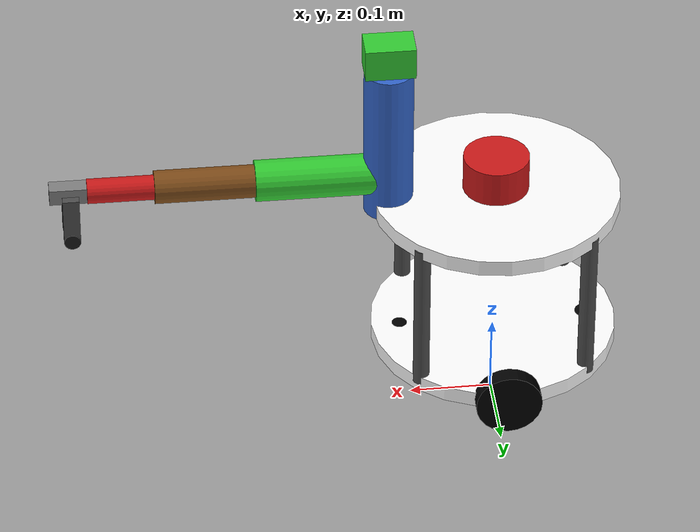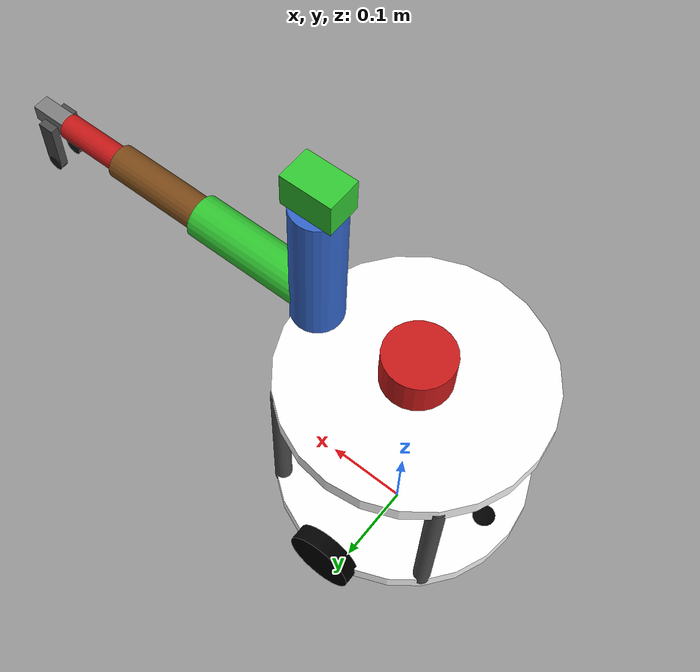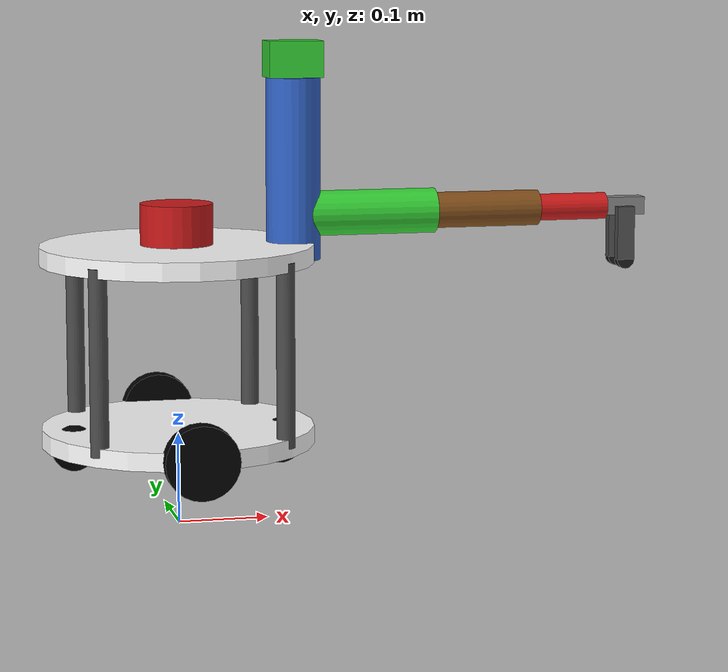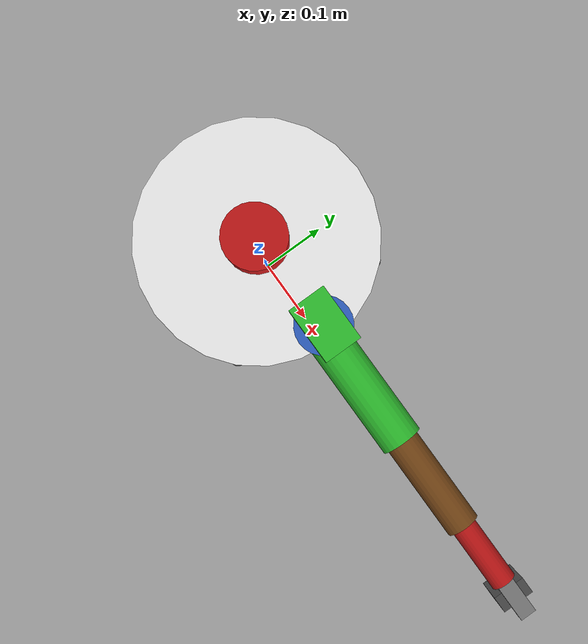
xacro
<?xml version="1.0"?>
<robot name="piklet_m1" xmlns:xacro="http://www.ros.org/wiki/xacro">

  <xacro:arg name="prefix" default="" />

  <xacro:property name="M_PI" value="3.1415926535897931" />
  <xacro:property name="base_radius" value="0.15" />
  <xacro:property name="passive_wheel_height" value="0.04" />
  <xacro:property name="passive_wheel_radius" value="0.025" />
  <xacro:property name="passive_wheel_mass" value="0.5" />
  <xacro:property name="wheel_radius" value="0.04" />
  <xacro:property name="wheel_height" value="0.02" />
  <xacro:property name="wheel_mass" value="2.5" />
  <xacro:property name="pole_length" value="0.2" />
  <xacro:property name="front_mount_length" value="0.2" />
  <xacro:property name="robot_path" value="$(find piklet_description)/urdf/piklet_m1" />

  <!-- Include modular parts -->
  <xacro:include filename="${robot_path}/materials.xacro"/>
  <xacro:include filename="${robot_path}/body.xacro"/>
  <xacro:include filename="${robot_path}/wheel.xacro"/>
  <xacro:include filename="${robot_path}/caster.xacro"/>
  <xacro:include filename="${robot_path}/lidar.xacro"/>
  <xacro:include filename="${robot_path}/depth_camera.xacro"/>
  <xacro:include filename="${robot_path}/gazebo.xacro"/>
  <xacro:include filename="${robot_path}/arm-3-dof.xacro"/>
  <xacro:include filename="${robot_path}/finger-2-gripper.xacro"/>
  <xacro:include filename="${robot_path}/piklet_ros2_control.xacro"/>

  <!-- Base body (two plates + poles) -->
  <!-- The base footprint of the robot is located underneath the chassis -->
  <link name="world" />
  <xacro:piklet_body parent="world"/>

  <!-- Drive wheels -->
  <xacro:wheel side="right" parent="base_link" translateX="0"
    translateY="-${base_radius}"/>
  <xacro:wheel side="left" parent="base_link" translateX="0"
    translateY="${base_radius}" />

  <!-- Casters -->
  <xacro:passive_wheel_joint name="passive_wheel_front_joint"
    parent="base_link"
    child="passive_wheel_front_link">
  <origin xyz="0.115 0.0 0.007" rpy="${-M_PI/2} 0 0" />
  </xacro:passive_wheel_joint>
  <xacro:passive_wheel_link name="passive_wheel_front_link">
    <origin xyz="0 0.02 0" rpy="${M_PI/2} 0 0" />
  </xacro:passive_wheel_link>

  <xacro:passive_wheel_joint name="passive_wheel_back_joint"
    parent="base_link"
    child="passive_wheel_back_link">
    <origin xyz="-0.135 0.0 0.009" rpy="${-M_PI/2} 0 0"/>
  </xacro:passive_wheel_joint>
  <xacro:passive_wheel_link name="passive_wheel_back_link">
    <origin xyz="0.02 0.02 0 " rpy="${M_PI/2} 0 0" />
  </xacro:passive_wheel_link>

  <!-- Arm attaches to front_mount lower part -->
  <xacro:simple_arm parent="front_mount" base_radius="${base_radius}"/>

  <!-- 2 finger parallel gripper -->
  <xacro:parallel_gripper parent_link="arm_link_end" xyz="0.1 0 0"/>

  <!-- Sensors -->
  <xacro:lidar_sensor parent="base_top" xyz="0 0 0.030"/>

  <!-- Camera attaches on top of mount -->
  <xacro:depth_camera parent="front_mount" xyz="0 0 0.12"/>

  <!-- Gazebo Plugins -->
  <xacro:lidar_plugin parent="lidar_link"/>
  <xacro:depth_camera_plugin parent="depth_camera_link"/>

  <!-- ros2_control -->
  <xacro:piklet_diffdrive_ros2_control name="Piklet_m1" prefix="$(arg prefix)" />

</robot>

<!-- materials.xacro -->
<robot xmlns:xacro="http://www.ros.org/wiki/xacro">

  <xacro:macro name="color_material" params="name r g b a">
    <material name="${name}">
      <color rgba="${r} ${g} ${b} ${a}"/>
    </material>
  </xacro:macro>

  <!-- Define common colors -->
  <xacro:color_material name="gray" r="0.6" g="0.6" b="0.6" a="1"/>
  <xacro:color_material name="blue" r="0.2" g="0.4" b="0.8" a="1"/>
  <xacro:color_material name="black" r="0" g="0" b="0" a="1"/>
  <xacro:color_material name="darkgray" r="0.3" g="0.3" b="0.3" a="1"/>
  <xacro:color_material name="red" r="0.8" g="0.1" b="0.1" a="1"/>
  <xacro:color_material name="yellow" r="0.5" g="0.3" b="0.1" a="1"/>
  <xacro:color_material name="green" r="0.2" g="0.8" b="0.2" a="1"/>
  <xacro:color_material name="white" r="1" g="1" b="1" a="1"/>

</robot>

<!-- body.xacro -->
<robot xmlns:xacro="http://www.ros.org/wiki/xacro">

  <xacro:macro name="cylinder_inertia" params="m r h">
    <inertia ixx="${m*(3*r*r+h*h)/12}" ixy="0" ixz="0"
      iyy="${m*(3*r*r+h*h)/12}" iyz="0"
      izz="${m*(3*r*r+h*h)/12}" />
  </xacro:macro>

  <xacro:macro name="piklet_body" params="parent">
    <joint name="base_joint" type="fixed">
      <parent link="${parent}"/>
      <child link="base_link" />
      <origin xyz="0 0 0.1" rpy="0 0 0"/>
    </joint>

    <!-- Bottom plate -->
    <link name="base_link">
      <inertial>
        <mass value="5" />
        <origin xyz="0 0 0" />
        <xacro:cylinder_inertia m="5" r="${base_radius}" h="0.02" />
      </inertial>
      <visual>
        <origin xyz="0 0 0" rpy="0 0 0" />
        <geometry>
          <cylinder length="0.02" radius="${base_radius}" />
        </geometry>
        <material name="white" />
      </visual>
      <collision>
        <origin xyz="0 0 0" rpy="0 0 0" />
        <geometry>
          <cylinder length="0.02" radius="${base_radius}" />
        </geometry>
      </collision>
    </link>

    <!-- Top plate -->
    <link name="base_top">
      <inertial>
        <mass value="5" />
        <origin xyz="0 0 0" />
        <xacro:cylinder_inertia m="5" r="${base_radius}" h="0.02" />
      </inertial>
      <visual>
        <origin xyz="0 0 0" rpy="0 0 0" />
        <geometry>
          <cylinder length="0.02" radius="${base_radius}" />
        </geometry>
        <material name="white" />
      </visual>
      <collision>
        <origin xyz="0 0 0" rpy="0 0 0" />
        <geometry>
          <cylinder length="0.02" radius="${base_radius}" />
        </geometry>
      </collision>
    </link>

    <joint name="base_top_joint" type="fixed">
      <origin xyz="0 0 0.2"/>
      <parent link="base_link"/>
      <child link="base_top"/>
    </joint>

    <!-- Poles -->
    <xacro:pole name="pole_fl" xyz="0.1 0.1 0.1"/>
    <xacro:pole name="pole_fr" xyz="0.1 -0.1 0.1"/>
    <xacro:pole name="pole_bl" xyz="-0.1 0.1 0.1"/>
    <xacro:pole name="pole_br" xyz="-0.1 -0.1 0.1"/>
  </xacro:macro>

  <!-- Pole macro -->
  <xacro:macro name="pole" params="name xyz">
    <link name="${name}">
      <visual>
        <geometry><cylinder radius="0.01" length="${pole_length}"/></geometry>
        <material name="darkgray"/>
      </visual>
      <collision>
        <origin xyz="0 0 0" rpy="0 0 0" />
        <geometry>
          <cylinder length="${pole_length}" radius="0.01" />
        </geometry>
      </collision>
    </link>
    <joint name="${name}_joint" type="fixed">
      <origin xyz="${xyz}" rpy="0 0 0"/>
      <parent link="base_link"/>
      <child link="${name}"/>
    </joint>
  </xacro:macro>

  <!-- front mount -->
  <link name="front_mount">
    <inertial>
      <mass value="0.3" />
      <origin xyz="0 0 0" />
      <xacro:cylinder_inertia m="0.3" r="0.03" h="${front_mount_length}" />
    </inertial>
    <visual>
      <geometry><cylinder radius="0.03" length="${front_mount_length}"/></geometry>
      <origin xyz="0 0 0" rpy="0 0 0"/>
      <material name="blue"/>
    </visual>
    <collision>
      <geometry><cylinder radius="0.03" length="${front_mount_length}"/></geometry>
      <origin xyz="0 0 0" rpy="0 0 0"/>
    </collision>
  </link>

  <joint name="front_mount_joint" type="fixed">
    <parent link="base_top"/>
    <child link="front_mount"/>
    <origin xyz="0.13 0 0.09" rpy="0 0 0"/>
  </joint>

</robot>

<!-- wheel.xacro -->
<robot xmlns:xacro="http://www.ros.org/wiki/xacro">

  <xacro:macro name="wheel" params="side parent translateX translateY">
    <link name="${side}_wheel">
      <visual>
        <origin xyz="0 0 0" rpy="${M_PI/2} 0 0" />
        <geometry>
          <cylinder length="${wheel_height}" radius="${wheel_radius}" />
        </geometry>
        <material name="black" />
      </visual>
      <collision>
        <origin xyz="0 0 0" rpy="${M_PI/2} 0 0 " />
        <geometry>
          <cylinder length="${wheel_height}" radius="${wheel_radius}" />
        </geometry>
        <surface>
          <friction>
            <ode>
              <mu>1.0</mu>
              <mu2>1.0</mu2>
            </ode>
          </friction>
        </surface>
      </collision>
      <inertial>
        <mass value="${wheel_mass}" />
        <origin xyz="0 0 0" />
        <inertia ixx="0.001" ixy="0.0" ixz="0.0"
          iyy="0.001" iyz="0.0"
          izz="0.001" />
      </inertial>
    </link>
    <joint name="${side}_wheel_joint" type="continuous">
      <parent link="${parent}" />
      <child link="${side}_wheel" />
      <origin xyz="0 ${translateY} 0" rpy="0 0 0" />
      <axis xyz="0 1 0" rpy="0 0 0" />
      <limit effort="100" velocity="100" />
      <dynamics damping="0.5" friction="0.2"/>
    </joint>
  </xacro:macro>

  <xacro:macro name="passive_wheel_joint" params="name parent child *origin">
    <joint name="${name}" type="fixed" >
      <parent link="${parent}" />
      <child link="${child}" />
      <xacro:insert_block name="origin" />
    </joint>
  </xacro:macro>

  <xacro:macro name="passive_wheel_link" params="name *origin">
    <link name="${name}">
      <visual>
        <xacro:insert_block name="origin"/>
        <geometry>
          <sphere radius="${passive_wheel_radius}" />
        </geometry>
        <material name="Black" />
      </visual>
      <collision>
        <geometry>
          <sphere radius="${passive_wheel_radius}" />
        </geometry>
        <origin xyz="0 0.02 0" rpy="${M_PI/2} 0 0" />
      </collision>
      <inertial>
        <mass value="${passive_wheel_mass}" />
        <origin xyz="0 0 0" />
        <inertia ixx="0.001" ixy="0.0" ixz="0.0"
          iyy="0.001" iyz="0.0"
          izz="0.001" />
      </inertial>
    </link>
  </xacro:macro>

</robot>

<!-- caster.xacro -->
<robot xmlns:xacro="http://www.ros.org/wiki/xacro">

  <xacro:macro name="passive_wheel_joint" params="name parent child *origin">
    <joint name="${name}" type="fixed" >
      <parent link="${parent}" />
      <child link="${child}" />
      <xacro:insert_block name="origin" />
    </joint>
  </xacro:macro>

  <xacro:macro name="passive_wheel_link" params="name *origin">
    <link name="${name}">
      <visual>
        <xacro:insert_block name="origin"/>
        <geometry>
          <sphere radius="${passive_wheel_radius}" />
        </geometry>
        <material name="black" />
      </visual>
      <collision>
        <geometry>
          <sphere radius="${passive_wheel_radius}" />
        </geometry>
        <origin xyz="0 0.02 0" rpy="${M_PI/2} 0 0" />
      </collision>
      <inertial>
        <mass value="${passive_wheel_mass}" />
        <origin xyz="0 0 0" />
        <inertia ixx="0.001" ixy="0.0" ixz="0.0"
          iyy="0.001" iyz="0.0"
          izz="0.001" />
      </inertial>
    </link>
  </xacro:macro>

</robot>

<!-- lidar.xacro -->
<robot xmlns:xacro="http://www.ros.org/wiki/xacro">

  <xacro:macro name="lidar_sensor" params="parent xyz">
    <link name="lidar_link">
      <visual>
        <geometry><cylinder radius="0.04" length="0.05"/></geometry>
        <origin xyz="0 0 0"/>
        <material name="red"/>
      </visual>
      <collision>
        <origin xyz="0 0 0" rpy="0 0 0" />
        <geometry>
          <cylinder length="0.05" radius="0.04" />
        </geometry>
      </collision>
    </link>
    <joint name="lidar_joint" type="fixed">
      <origin xyz="${xyz}"/>
      <parent link="${parent}"/>
      <child link="lidar_link"/>
    </joint>
  </xacro:macro>

</robot>

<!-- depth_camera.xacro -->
<robot xmlns:xacro="http://www.ros.org/wiki/xacro">

  <xacro:macro name="depth_camera" params="parent xyz">

    <link name="depth_camera_link">
      <visual>
        <geometry><box size="0.06 0.04 0.04"/></geometry>
        <material name="green"/>
      </visual>
      <collision>
        <origin xyz="0 0 0" rpy="0 0 0" />
        <geometry>
          <box size="0.06 0.04 0.04" />
        </geometry>
      </collision>
    </link>

    <joint name="depth_camera_mount" type="fixed">
      <parent link="${parent}"/>
      <child link="depth_camera_link"/>
      <origin xyz="${xyz}" />
    </joint>
  </xacro:macro>

</robot>

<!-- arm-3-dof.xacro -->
<robot xmlns:xacro="http://www.ros.org/wiki/xacro">

  <xacro:property name="M_PI" value="3.1415926535897931"/>

  <xacro:macro name="simple_arm" params="parent base_radius">
    <link name="shoulder_yaw_link">
      <visual>
        <geometry>
          <sphere radius="0.01"/>
        </geometry>
      </visual>
      <inertial>
        <mass value="1e-6"/>
        <inertia ixx="1e-9" iyy="1e-9" izz="1e-9" ixy="0" ixz="0" iyz="0"/>
      </inertial>
    </link>
    <joint name="shoulder_yaw" type="revolute">
      <parent link="${parent}"/>
      <child link="shoulder_yaw_link"/>
      <origin xyz="0 0 -0.05" rpy="0 0 0"/>
      <axis xyz="0 0 1"/>
      <limit lower="-1.57" upper="1.57" effort="5" velocity="1"/>
    </joint>

    <link name="shoulder_pitch_link">
      <visual>
        <geometry>
          <sphere radius="0.01"/>
        </geometry>
      </visual>
      <inertial>
        <mass value="1e-6"/>
        <inertia ixx="1e-9" iyy="1e-9" izz="1e-9" ixy="0" ixz="0" iyz="0"/>
      </inertial>
    </link>
    <joint name="shoulder_pitch" type="revolute">
      <parent link="shoulder_yaw_link"/>
      <child link="shoulder_pitch_link"/>
      <origin xyz="0 0 0" rpy="0 0 0"/>
      <axis xyz="0 1 0"/>
      <limit lower="-1.57" upper="1.57" effort="5" velocity="1"/>
    </joint>

    <link name="shoulder_roll_link">
      <visual>
        <geometry>
          <sphere radius="0.01"/>
        </geometry>
      </visual>
      <inertial>
        <mass value="1e-6"/>
        <inertia ixx="1e-9" iyy="1e-9" izz="1e-9" ixy="0" ixz="0" iyz="0"/>
      </inertial>
    </link>
    <joint name="shoulder_roll" type="revolute">
      <parent link="shoulder_pitch_link"/>
      <child link="shoulder_roll_link"/>
      <origin xyz="0 0 0" rpy="0 0 0"/>
      <axis xyz="1 0 0"/>
      <limit lower="-1.57" upper="1.57" effort="5" velocity="1"/>
    </joint>

    <link name="arm_link1">
      <inertial>
        <mass value="0.4"/>
        <inertia ixx="5.06e-4" iyy="5.06e-4" izz="1.25e-4" ixy="0" ixz="0" iyz="0"/>
      </inertial>
      <visual>
        <geometry><cylinder radius="0.025" length="0.16"/></geometry>
        <origin xyz="0.08 0 0" rpy="0 ${M_PI/2} 0"/>
        <material name="green"/>
      </visual>
      <collision>
        <geometry><cylinder radius="0.025" length="0.16"/></geometry>
        <origin xyz="0.08 0 0" rpy="0 ${M_PI/2} 0"/>
      </collision>
    </link>

    <joint name="arm_link1_joint" type="fixed">
      <parent link="shoulder_roll_link"/>
      <child link="arm_link1"/>
      <origin xyz="0 0 0" rpy="0 0 0"/>
    </joint>

    <link name="arm_link2">
      <inertial>
        <mass value="0.25"/>
        <inertia ixx="5e-4" iyy="5e-4" izz="2e-4" ixy="0" ixz="0" iyz="0"/>
      </inertial>
      <visual>
        <geometry><cylinder radius="0.02" length="0.12"/></geometry>
        <origin xyz="0.06 0 0" rpy="0 ${M_PI/2} 0"/>
        <material name="yellow"/>
      </visual>
      <collision>
        <geometry><cylinder radius="0.02" length="0.12"/></geometry>
        <origin xyz="0.06 0 0" rpy="0 ${M_PI/2} 0"/>
      </collision>
    </link>

    <joint name="elbow_joint" type="revolute">
      <parent link="arm_link1"/>
      <child link="arm_link2"/>
      <origin xyz="0.16 0 0" rpy="0 0 0"/>
      <axis xyz="0 1 0"/>
      <limit lower="-1.57" upper="1.57" effort="5" velocity="1"/>
    </joint>

    <link name="arm_link_end">
      <inertial>
        <mass value="0.15"/>
        <inertia ixx="2e-4" iyy="2e-4" izz="1e-4" ixy="0" ixz="0" iyz="0"/>
      </inertial>
      <visual>
        <geometry><cylinder radius="0.015" length="0.08"/></geometry>
        <origin xyz="0.04 0 0" rpy="0 ${M_PI/2} 0"/>
        <material name="red"/>
      </visual>
      <collision>
        <geometry><cylinder radius="0.015" length="0.08"/></geometry>
        <origin xyz="0.04 0 0" rpy="0 ${M_PI/2} 0"/>
      </collision>
    </link>

    <joint name="wrist_joint" type="revolute">
      <parent link="arm_link2"/>
      <child link="arm_link_end"/>
      <origin xyz="0.12 0 0" rpy="0 0 0"/>
      <axis xyz="0 1 0"/>
      <limit lower="-1.57" upper="1.57" effort="5" velocity="1"/>
    </joint>

  </xacro:macro>
</robot>

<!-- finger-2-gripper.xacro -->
<robot xmlns:xacro="http://www.ros.org/wiki/xacro">

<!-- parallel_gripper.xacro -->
  <xacro:macro name="parallel_gripper" params="parent_link xyz gripper_prefix:=gripper">
    <!-- Base link for the gripper -->
    <link name="${gripper_prefix}_base">
      <visual>
        <geometry>
          <box size="0.05 0.02 0.02"/> <!-- small gripper base block -->
        </geometry>
        <material name="gray">
          <color rgba="0.5 0.5 0.5 1"/>
        </material>
      </visual>
      <collision>
        <geometry>
          <box size="0.05 0.02 0.02"/>
        </geometry>
      </collision>
      <inertial>
        <mass value="0.1"/>
        <origin xyz="0 0 0"/>
        <inertia ixx="1e-4" iyy="1e-4" izz="1e-4" ixy="0" ixz="0" iyz="0"/>
      </inertial>
    </link>

    <!-- Attach base to parent arm link -->
    <joint name="${gripper_prefix}_mount_joint" type="fixed">
      <parent link="${parent_link}"/>
      <child link="${gripper_prefix}_base"/>
      <origin xyz="${xyz}" rpy="3.14 0 0"/>
    </joint>

    <!-- Left finger -->
    <link name="${gripper_prefix}_left_finger">
      <visual>
        <geometry>
          <box size="0.02 0.01 0.06"/>
        </geometry>
        <origin xyz="0 0 0.03" rpy="0 0 0"/>
        <material name="dark_gray">
          <color rgba="0.3 0.3 0.3 1"/>
        </material>
      </visual>
      <collision>
        <geometry>
          <box size="0.02 0.01 0.06"/>
        </geometry>
        <origin xyz="0 0 0.03" rpy="0 0 0"/>
      </collision>
      <inertial>
        <mass value="0.05"/>
        <origin xyz="0 0 0.03"/>
        <inertia ixx="5e-5" iyy="5e-5" izz="5e-5" ixy="0" ixz="0" iyz="0"/>
      </inertial>
    </link>

    <!-- Concave tip (approximated with a small cylinder) -->
    <link name="${gripper_prefix}_left_tip">
      <visual>
        <geometry>
          <cylinder length="0.01" radius="0.01"/>
        </geometry>
        <origin xyz="0 0 0.06" rpy="1.57 0 0"/> <!-- rotate so it's a "cup" -->
        <material name="rubber">
          <color rgba="0.1 0.1 0.1 1"/>
        </material>
      </visual>
      <collision>
        <geometry>
          <cylinder length="0.01" radius="0.01"/>
        </geometry>
        <origin xyz="0 0 0.06" rpy="1.57 0 0"/>
      </collision>
      <inertial>
        <mass value="0.01"/>
        <origin xyz="0 0 0.06"/>
        <inertia ixx="1e-5" iyy="1e-5" izz="1e-5" ixy="0" ixz="0" iyz="0"/>
      </inertial>
    </link>

    <joint name="${gripper_prefix}_left_joint" type="prismatic">
      <parent link="${gripper_prefix}_base"/>
      <child link="${gripper_prefix}_left_finger"/>
      <origin xyz="0 0.015 0" rpy="0 0 0"/>
      <axis xyz="0 -1 0"/>
      <limit lower="0.0" upper="0.04" effort="10" velocity="0.02"/>
    </joint>

    <joint name="${gripper_prefix}_left_tip_joint" type="fixed">
      <parent link="${gripper_prefix}_left_finger"/>
      <child link="${gripper_prefix}_left_tip"/>
      <origin xyz="0 0 0"/>
    </joint>

    <!-- Right finger -->
    <link name="${gripper_prefix}_right_finger">
      <visual>
        <geometry>
          <box size="0.02 0.01 0.06"/>
        </geometry>
        <origin xyz="0 0 0.03"/>
        <material name="dark_gray"/>
      </visual>
      <collision>
        <geometry>
          <box size="0.02 0.01 0.06"/>
        </geometry>
        <origin xyz="0 0 0.03"/>
      </collision>
      <inertial>
        <mass value="0.05"/>
        <origin xyz="0 0 0.03"/>
        <inertia ixx="5e-5" iyy="5e-5" izz="5e-5" ixy="0" ixz="0" iyz="0"/>
      </inertial>
    </link>

    <link name="${gripper_prefix}_right_tip">
      <visual>
        <geometry>
          <cylinder length="0.01" radius="0.01"/>
        </geometry>
        <origin xyz="0 0 0.06" rpy="1.57 0 0"/>
        <material name="rubber"/>
      </visual>
      <collision>
        <geometry>
          <cylinder length="0.01" radius="0.01"/>
        </geometry>
        <origin xyz="0 0 0.06" rpy="1.57 0 0"/>
      </collision>
      <inertial>
        <mass value="0.01"/>
        <origin xyz="0 0 0.06"/>
        <inertia ixx="1e-5" iyy="1e-5" izz="1e-5" ixy="0" iyz="0" ixz="0"/>
      </inertial>
    </link>

    <joint name="${gripper_prefix}_right_joint" type="prismatic">
      <parent link="${gripper_prefix}_base"/>
      <child link="${gripper_prefix}_right_finger"/>
      <origin xyz="0 -0.015 0" rpy="0 0 0"/>
      <axis xyz="0 1 0"/>
      <limit lower="0.0" upper="0.04" effort="10" velocity="0.02"/>
      <!-- Mimic left finger for symmetry -->
      <mimic joint="${gripper_prefix}_left_joint" multiplier="1" offset="0"/>
    </joint>

    <joint name="${gripper_prefix}_right_tip_joint" type="fixed">
      <parent link="${gripper_prefix}_right_finger"/>
      <child link="${gripper_prefix}_right_tip"/>
    </joint>

    <!-- Define TCP (tool center point) -->
    <link name="${gripper_prefix}_tool"/>
    <joint name="${gripper_prefix}_tool_joint" type="fixed">
      <parent link="${gripper_prefix}_base"/>
      <child link="${gripper_prefix}_tool"/>
      <origin xyz="0.1 0 0" rpy="0 0 0"/>
    </joint>
  </xacro:macro>

</robot>
